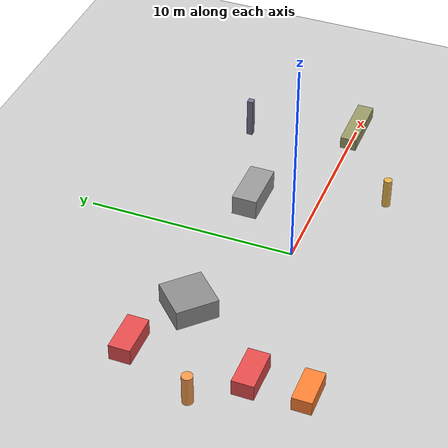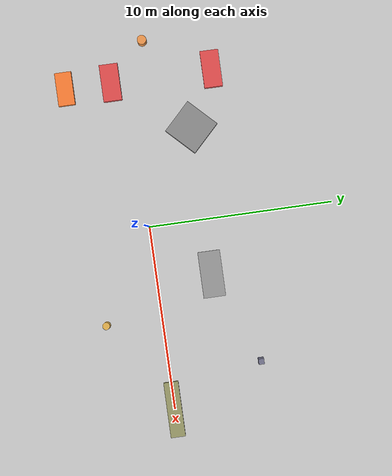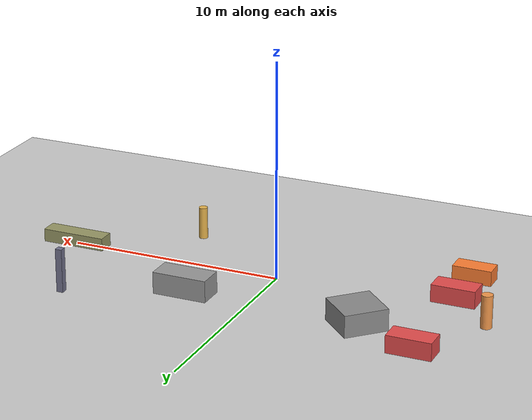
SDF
<?xml version="1.0"?>
<sdf version='1.7'>
  <world name='default'>
    <light name='sun' type='directional'>
      <cast_shadows>1</cast_shadows>
      <pose>0 0 10 0 -0 0</pose>
      <diffuse>0.8 0.8 0.8 1</diffuse>
      <specular>0.2 0.2 0.2 1</specular>
      <attenuation>
        <range>1000</range>
        <constant>0.9</constant>
        <linear>0.01</linear>
        <quadratic>0.001</quadratic>
      </attenuation>
      <direction>-0.5 0.1 -0.9</direction>
    </light>
    <model name='ground_plane'>
      <static>1</static>
      <link name='link'>
        <collision name='collision'>
          <geometry><plane><normal>0 0 1</normal><size>100 100</size></plane></geometry>
          <surface><contact><collide_bitmask>65535</collide_bitmask><ode/></contact><friction><ode><mu>100</mu><mu2>50</mu2></ode><torsional><ode/></torsional></friction><bounce/></surface>
          <max_contacts>10</max_contacts>
        </collision>
        <visual name='visual'>
          <cast_shadows>0</cast_shadows>
          <geometry><plane><normal>0 0 1</normal><size>100 100</size></plane></geometry>
          <material><script><uri>file://media/materials/scripts/gazebo.material</uri><name>Gazebo/Grey</name></script></material>
        </visual>
      </link>
    </model>
    <physics type='ode'>
      <max_step_size>0.01</max_step_size>
      <real_time_factor>1</real_time_factor>
      <real_time_update_rate>100</real_time_update_rate>
      <ode><solver><type>quick</type><iters>150</iters><precon_iters>0</precon_iters><sor>1.4</sor><use_dynamic_moi_rescaling>1</use_dynamic_moi_rescaling></solver><constraints><cfm>1e-05</cfm><erp>0.2</erp><contact_max_correcting_vel>2000</contact_max_correcting_vel><contact_surface_layer>0.01</contact_surface_layer></constraints></ode>
    </physics>

    <!-- ===== 静态障碍物 ===== -->
    <model name='box_1'><static>1</static><link name='link'><collision name='collision'><geometry><box><size>2.5 1.2 1.0</size></box></geometry><surface><contact><ode/></contact></surface></collision><visual name='visual'><geometry><box><size>2.5 1.2 1.0</size></box></geometry><material><ambient>0.4 0.4 0.4 1</ambient><diffuse>0.6 0.6 0.6 1</diffuse></material></visual></link><pose>3 3 0.5 0 0 0</pose></model>
    <model name='box_2'><static>1</static><link name='link'><collision name='collision'><geometry><box><size>2 2 1.0</size></box></geometry><surface><contact><ode/></contact></surface></collision><visual name='visual'><geometry><box><size>2 2 1.0</size></box></geometry><material><ambient>0.35 0.35 0.35 1</ambient><diffuse>0.55 0.55 0.55 1</diffuse></material></visual></link><pose>-5 3 0.5 0 0 -0.78</pose></model>
    <model name='cylinder_1'><static>1</static><link name='link'><collision name='collision'><geometry><cylinder><radius>0.2</radius><length>1.5</length></cylinder></geometry><surface><contact><ode/></contact></surface></collision><visual name='visual'><geometry><cylinder><radius>0.2</radius><length>1.5</length></cylinder></geometry><material><ambient>0.8 0.6 0.2 1</ambient><diffuse>0.9 0.7 0.3 1</diffuse></material></visual></link><pose>5 -3 0.75 0 0 0</pose></model>
    <model name='cylinder_2'><static>1</static><link name='link'><collision name='collision'><geometry><cylinder><radius>0.25</radius><length>1.5</length></cylinder></geometry><surface><contact><ode/></contact></surface></collision><visual name='visual'><geometry><cylinder><radius>0.25</radius><length>1.5</length></cylinder></geometry><material><ambient>0.9 0.5 0.2 1</ambient><diffuse>0.95 0.6 0.3 1</diffuse></material></visual></link><pose>-10 1 0.75 0 0 0</pose></model>
    <model name='barrier_1'><static>1</static><link name='link'><collision name='collision'><geometry><box><size>3 0.8 0.6</size></box></geometry><surface><contact><ode/></contact></surface></collision><visual name='visual'><geometry><box><size>3 0.8 0.6</size></box></geometry><material><ambient>0.5 0.5 0.3 1</ambient><diffuse>0.6 0.6 0.4 1</diffuse></material></visual></link><pose>10 0 0.3 0 0 0</pose></model>
    <model name='pillar_1'><static>1</static><link name='link'><collision name='collision'><geometry><box><size>0.3 0.3 2.0</size></box></geometry><surface><contact><ode/></contact></surface></collision><visual name='visual'><geometry><box><size>0.3 0.3 2.0</size></box></geometry><material><ambient>0.35 0.35 0.45 1</ambient><diffuse>0.45 0.45 0.55 1</diffuse></material></visual></link><pose>8 5 1.0 0 0 0</pose></model>

    <!-- ===== 动态障碍物（移动方块） ===== -->
    <model name='moving_obstacle_1'>
      <static>0</static>
      <link name='link_0'>
        <pose>0 0 0 0 0 0</pose>
        <inertial><mass>10</mass><inertia><ixx>0.5</ixx><ixy>0</ixy><ixz>0</ixz><iyy>0.5</iyy><iyz>0</iyz><izz>0.5</izz></inertia></inertial>
        <collision name='collision'>
          <geometry><box><size>2 1 0.8</size></box></geometry>
          <surface><contact><ode/></contact></surface>
          <max_contacts>10</max_contacts>
        </collision>
        <visual name='visual'>
          <geometry><box><size>2 1 0.8</size></box></geometry>
          <material><ambient>0.8 0.2 0.2 1</ambient><diffuse>0.9 0.3 0.3 1</diffuse></material>
        </visual>
      </link>
      <pose>-8 4.5 0.4 0 0 0</pose>
    </model>
    <model name='moving_obstacle_2'>
      <static>0</static>
      <link name='link_0'>
        <pose>0 0 0 0 0 0</pose>
        <inertial><mass>10</mass><inertia><ixx>0.5</ixx><ixy>0</ixy><ixz>0</ixz><iyy>0.5</iyy><iyz>0</iyz><izz>0.5</izz></inertia></inertial>
        <collision name='collision'>
          <geometry><box><size>2 1 0.8</size></box></geometry>
          <surface><contact><ode/></contact></surface>
          <max_contacts>10</max_contacts>
        </collision>
        <visual name='visual'>
          <geometry><box><size>2 1 0.8</size></box></geometry>
          <material><ambient>0.8 0.2 0.2 1</ambient><diffuse>0.9 0.3 0.3 1</diffuse></material>
        </visual>
      </link>
      <pose>-8 -1 0.4 0 0 0</pose>
    </model>
    <model name='moving_obstacle_3'>
      <static>0</static>
      <link name='link_0'>
        <pose>0 0 0 0 0 0</pose>
        <inertial><mass>10</mass><inertia><ixx>0.5</ixx><ixy>0</ixy><ixz>0</ixz><iyy>0.5</iyy><iyz>0</iyz><izz>0.5</izz></inertia></inertial>
        <collision name='collision'>
          <geometry><box><size>1.8 0.9 0.7</size></box></geometry>
          <surface><contact><ode/></contact></surface>
          <max_contacts>10</max_contacts>
        </collision>
        <visual name='visual'>
          <geometry><box><size>1.8 0.9 0.7</size></box></geometry>
          <material><ambient>0.9 0.4 0.1 1</ambient><diffuse>1.0 0.5 0.2 1</diffuse></material>
        </visual>
      </link>
      <pose>-8 -3.5 0.35 0 0 0</pose>
    </model>
  </world>
</sdf>
